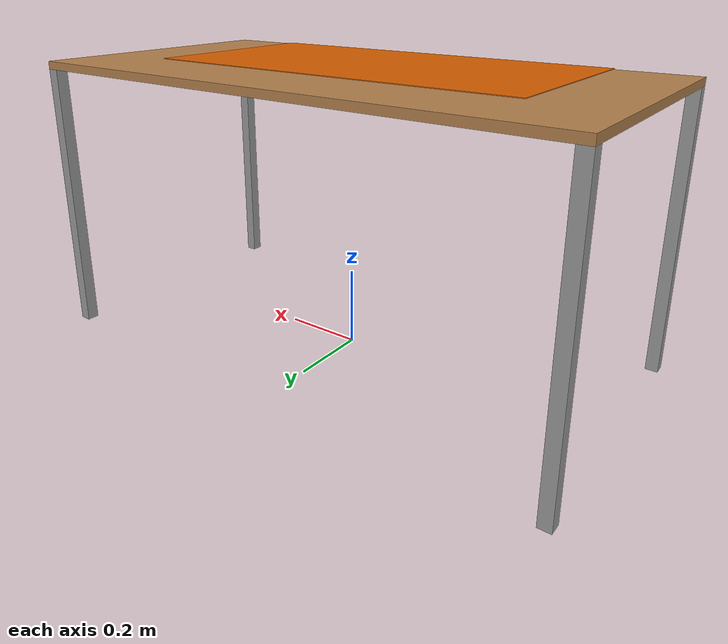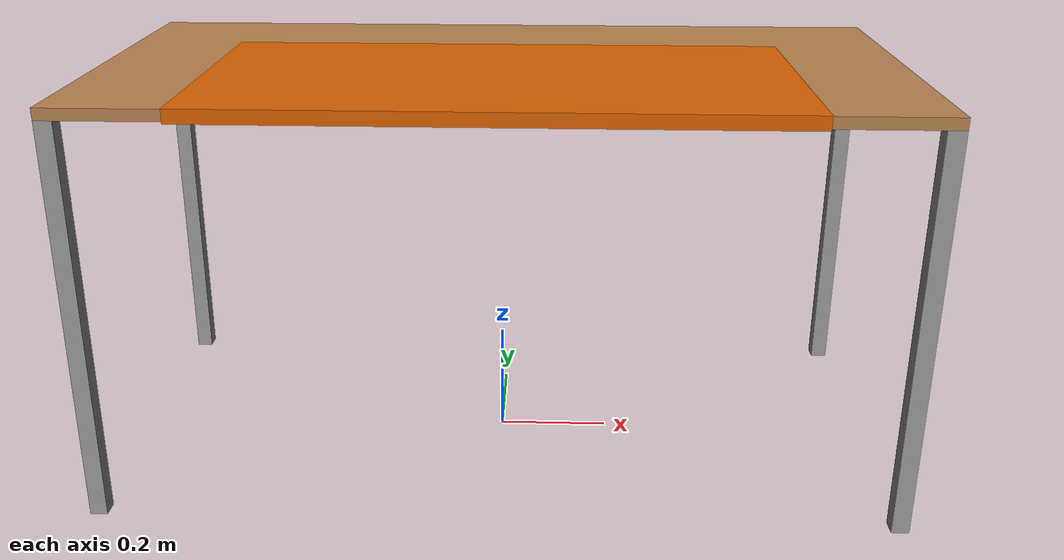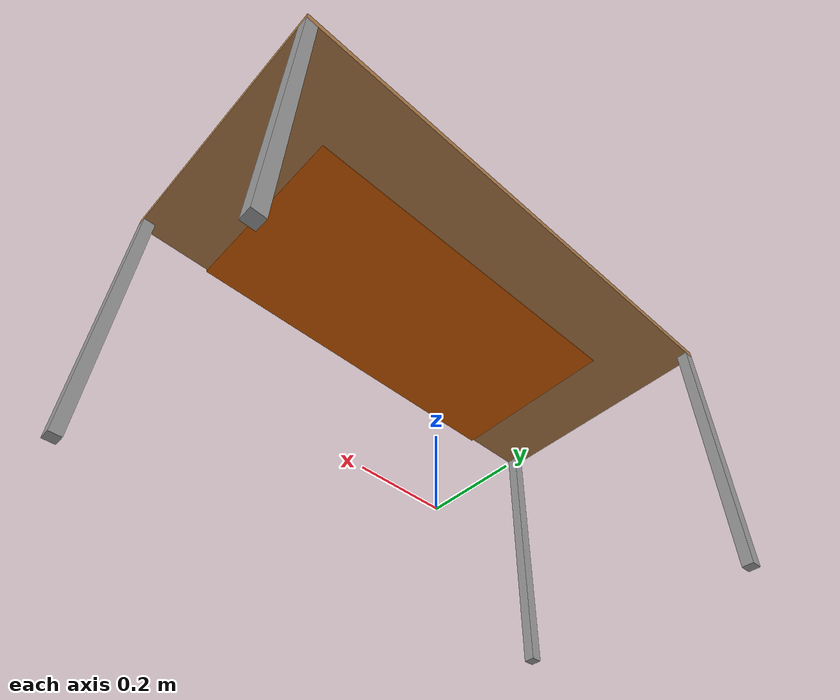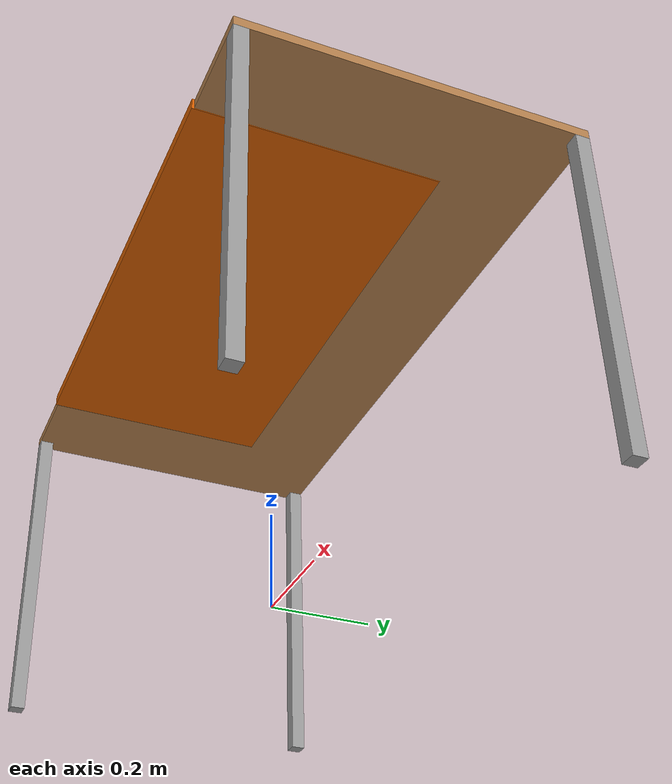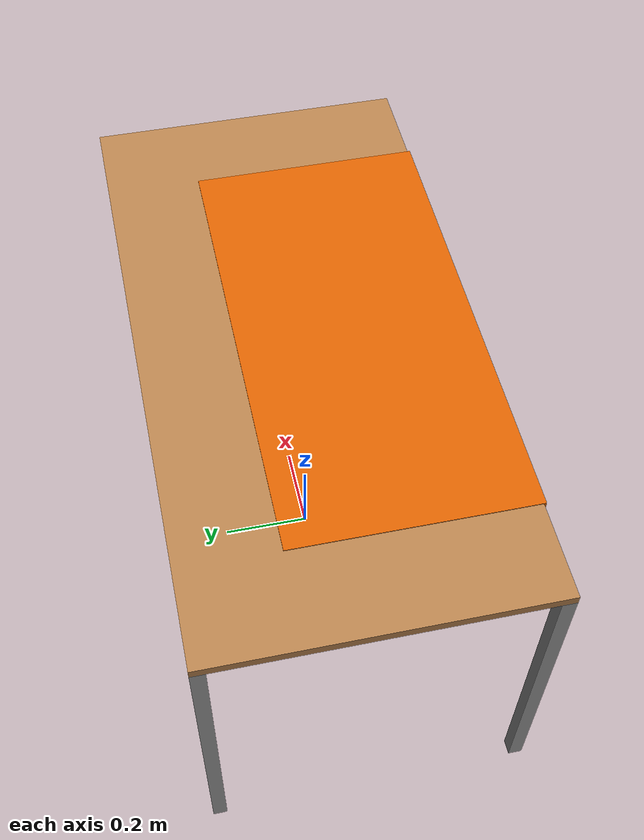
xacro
<?xml version="1.0"?>
<robot name="experiment_table" xmlns:xacro="http://www.ros.org/wiki/xacro">

  <xacro:include filename="$(find tams_description)/objects/uham_setup/table.xacro" />

  <xacro:property name="table_height" value="0.72" />
  <xacro:property name="table_width" value="1.40" />
  <xacro:property name="table_depth" value="0.70" />
  <xacro:property name="leg_radius" value="0.015" />
  <xacro:property name="table_x" value="0.0" />
  <xacro:property name="table_y" value="0.0" />
  <xacro:property name="table_z" value="0.0" />
  <xacro:property name="table_top_thickness" value="0.02"/>

  <link name="styrofoam_plate">
    <inertial>
      <mass value="0.02" />
      <origin xyz="0 0 ${table_height - table_top_thickness/2}" />
      <inertia ixx="1" ixy="0"  ixz="0" iyy="1" iyz="0" izz="1" />
    </inertial>
    <visual>
      <origin xyz="0 0 ${table_height - table_top_thickness/2}" />
      <geometry>
        <box size="1.0 0.5 0.024" />
      </geometry>
    </visual>
    <collision>
      <origin xyz="0 0 ${table_height - table_top_thickness/2}" />
      <geometry>
        <box size="1.0 0.5 0.024" />
      </geometry>
    </collision>
  </link>

  <gazebo reference="styrofoam_plate">
    <material>handle/DecimeterGrid</material>
    <mu1>50.0</mu1>
    <mu2>50.0</mu2>
    <kp>1000000.0</kp>
    <kd>1.0</kd>
  </gazebo>

  <joint name="$styrofoam_fix" type="fixed" >
    <parent link="table_plate" />
    <child link="styrofoam_plate" />
    <origin xyz="0 -0.105 0" rpy="0 0 0" />
  </joint>

</robot>

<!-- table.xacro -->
<robot name="table" xmlns:xacro="http://www.ros.org/wiki/xacro">

  <xacro:property name="table_height" value="0.72" />
  <xacro:property name="table_width" value="1.40" />
  <xacro:property name="table_depth" value="0.70" />
  <xacro:property name="leg_radius" value="0.015" />
  <xacro:property name="table_x" value="0.0" />
  <xacro:property name="table_y" value="0.0" />
  <xacro:property name="table_z" value="0.0" />

  <xacro:property name="table_top_thickness" value="0.02"/>

  <link name="table_plate">
    <inertial>
      <mass value="8.0" />
      <origin xyz="0 0 ${table_height - table_top_thickness/2}" />
      <inertia ixx="1" ixy="0"  ixz="0" iyy="1" iyz="0" izz="1" />
    </inertial>
    <visual>
      <origin xyz="0 0 ${table_height - table_top_thickness/2}" />
      <geometry>
        <box size="${table_width} ${table_depth} ${table_top_thickness}" />
      </geometry>
    </visual>
    <collision>
      <origin xyz="0 0 ${table_height - table_top_thickness/2}" />
      <geometry>
        <box size="${table_width} ${table_depth} ${table_top_thickness}" />
      </geometry>
    </collision>
  </link>
  <gazebo reference="table_plate">
    <material>handle/KotoWood</material>
    <mu1>50.0</mu1>
    <mu2>50.0</mu2>
    <kp>1000000.0</kp>
    <kd>1.0</kd>
  </gazebo>

  <xacro:macro name="leg" params="name *origin">

    <link name="${name}">
      <inertial>
        <mass value="1.0" />
        <origin xyz="0 0 ${table_height/2 - table_top_thickness/2}" />
        <inertia ixx="0.1" ixy="0"  ixz="0" iyy="0.1" iyz="0" izz="0.01" />
      </inertial>
      <visual>
        <origin xyz="0 0 ${table_height/2 - table_top_thickness/2}" />
        <geometry>
          <box size="${2*leg_radius} ${2*leg_radius} ${table_height-table_top_thickness}" />
        </geometry>
      </visual>
      <collision>
        <origin xyz="0 0 ${table_height/2-table_top_thickness/2}" />
        <geometry>
          <box size="${2*leg_radius} ${2*leg_radius} ${table_height-table_top_thickness}" />
        </geometry>
      </collision>
    </link>

    <gazebo reference="${name}">
      <material>Gazebo/Grey</material>
      <mu1>1000.0</mu1>
      <mu2>1000.0</mu2>
      <kp>10000000.0</kp>
      <kd>1.0</kd>
      <selfCollide>true</selfCollide>
    </gazebo>

    <joint name="${name}_joint" type="fixed" >
      <parent link="table_plate" />
      <xacro:insert_block name="origin" />
      <child link="${name}" />
    </joint>

  </xacro:macro>

  <xacro:leg name="leg1">
    <origin xyz="${-0.5*table_width+leg_radius} ${-0.5*table_depth+leg_radius} 0" rpy="0 0 0" />
  </xacro:leg>

  <xacro:leg name="leg2">
    <origin xyz="${-0.5*table_width+leg_radius} ${+0.5*table_depth-leg_radius} 0" rpy="0 0 0" />
  </xacro:leg>

  <xacro:leg name="leg3">
    <origin xyz="${+0.5*table_width-leg_radius} ${-0.5*table_depth+leg_radius} 0" rpy="0 0 0" />
  </xacro:leg>

  <xacro:leg name="leg4">
    <origin xyz="${+0.5*table_width-leg_radius} ${+0.5*table_depth-leg_radius} 0" rpy="0 0 0" />
  </xacro:leg>

</robot>
